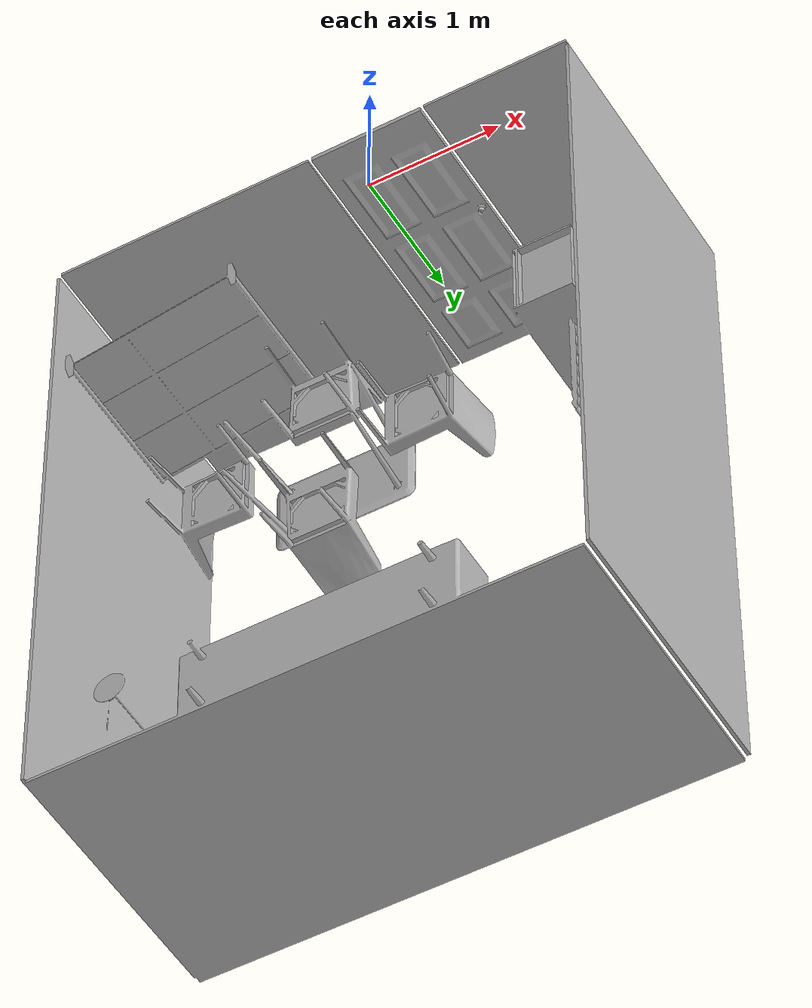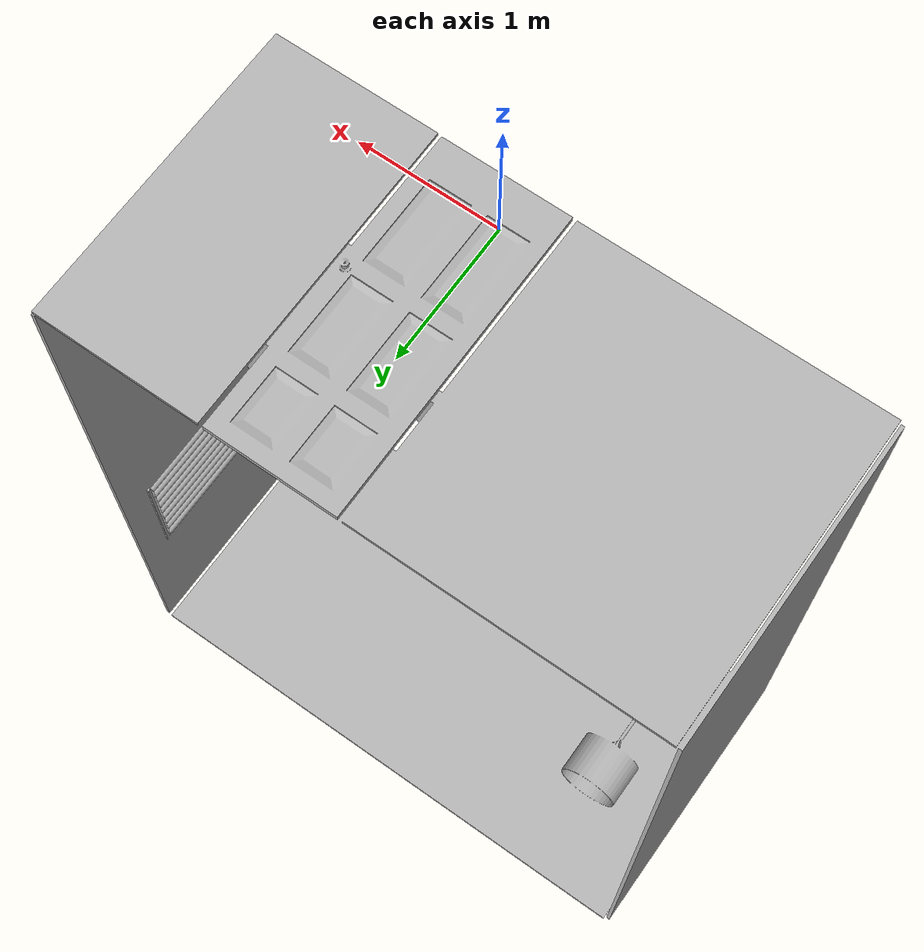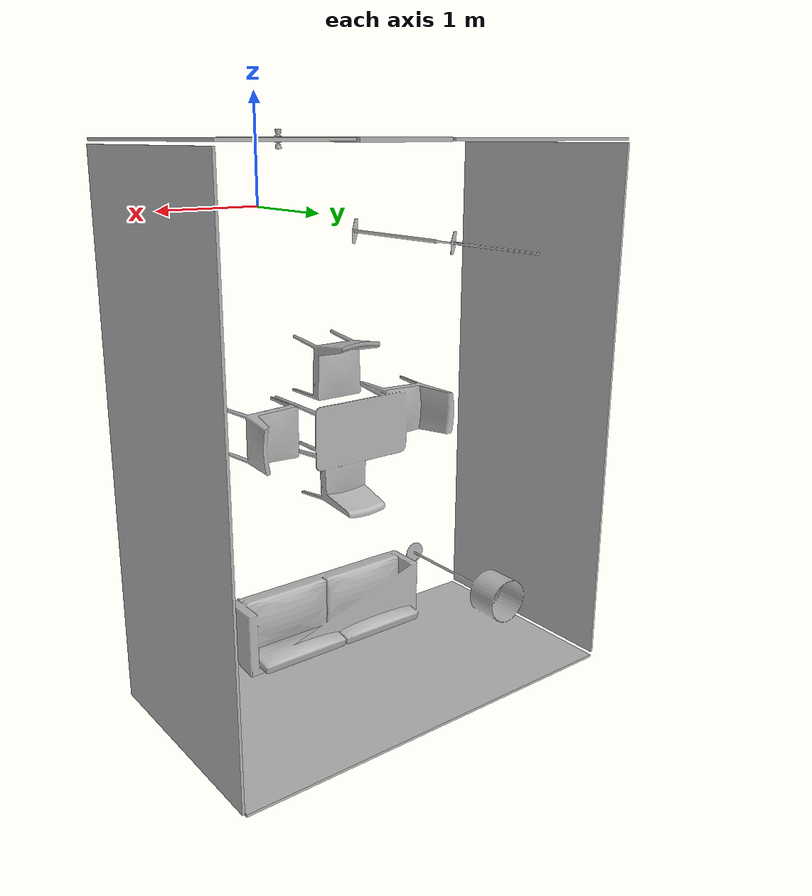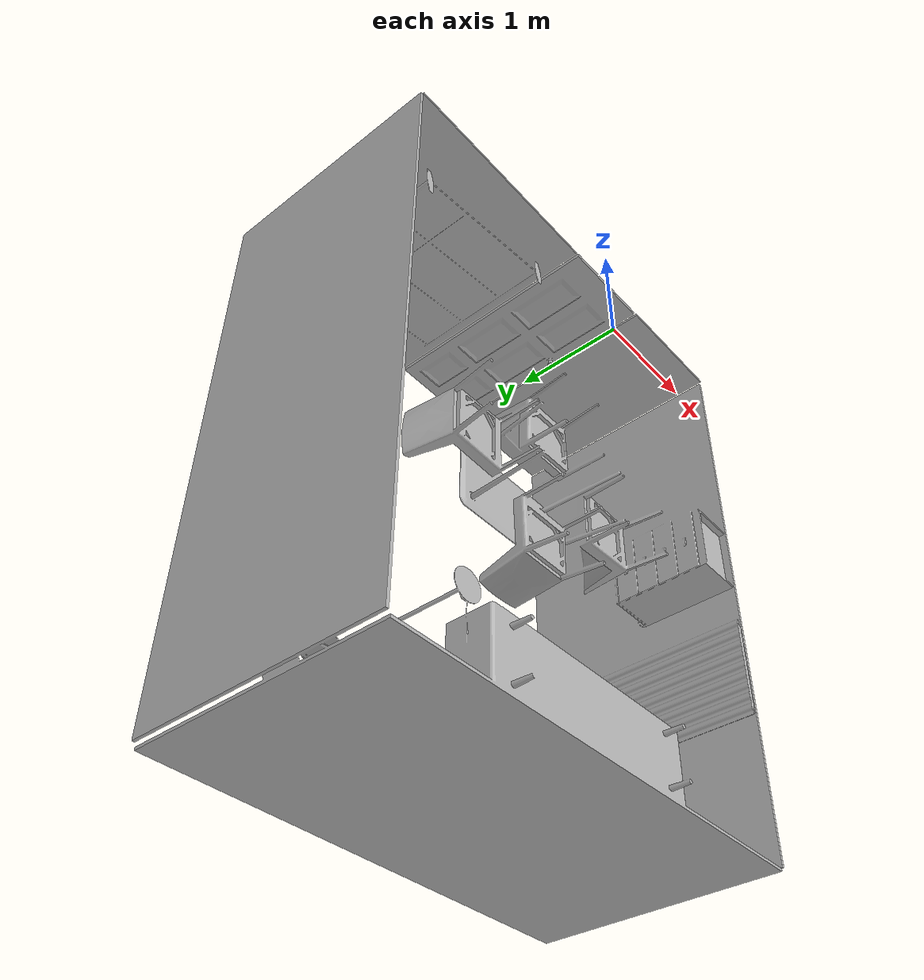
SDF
<?xml version="1.0" ?>

<sdf version="1.5">
    <model name="room">
        <static>1</static>
        <link name="link">
            <collision name='collision1'>
                <geometry>
                    <mesh>
                        <uri>model://room/meshes/IEC_room.obj</uri>
                        <scale>0.001 0.001 0.001</scale>
                    </mesh>
                </geometry>
                <max_contacts>10</max_contacts>
                <surface>
                    <bounce/>
                    <friction>
                    <ode/>
                    </friction>
                    <contact>
                    <ode/>
                    </contact>
                </surface>
            </collision>

            <visual name='visual1'>
                <geometry>
                    <mesh>
                        <uri>model://room/meshes/IEC_room.obj</uri>
                        <scale>0.001 0.001 0.001</scale>
                    </mesh>
                </geometry>
            </visual>
        </link>
    </model>
</sdf>
